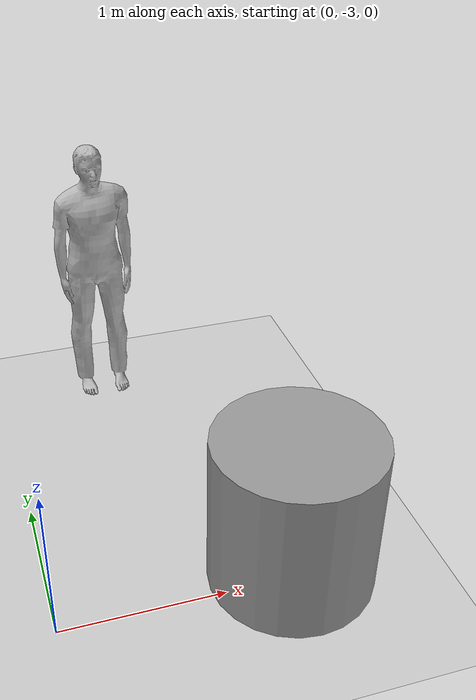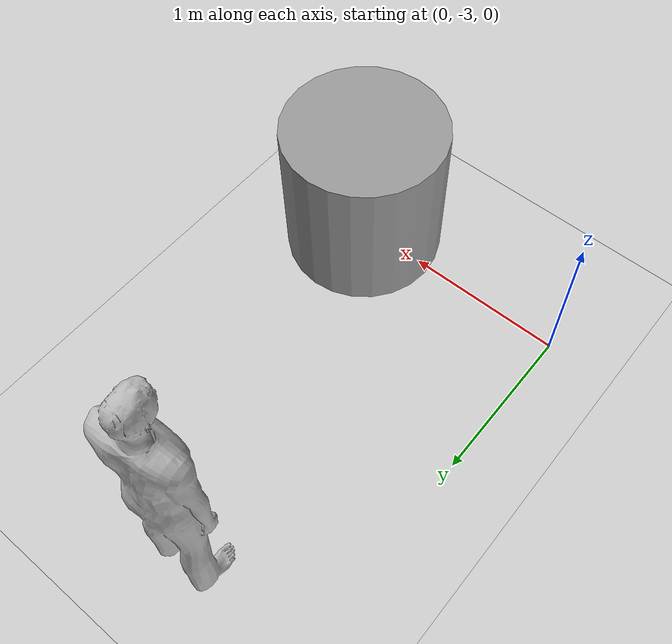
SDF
<sdf version="1.6">
 <world name="default">
  <light name="sun" type="directional">
   <pose>0 0 10 0 -0 0</pose>
   <diffuse>0.8 0.8 0.8 1</diffuse>
   <specular>0.2 0.2 0.2 1</specular>
   <attenuation>
    <range>1000</range>
    <constant>0.9</constant>
    <linear>0.01</linear>
    <quadratic>0.001</quadratic>
   </attenuation>
   <direction>-0.5 0.1 -0.9</direction>
  </light>
  <model name="ground_plane">
   <static>1</static>
   <link name="link">
    <collision name="collision">
     <geometry><plane><normal>0 0 1</normal><size>100 100</size></plane></geometry>
     <surface><friction><ode><mu>100</mu><mu2>50</mu2></ode></friction></surface>
    </collision>
    <visual name="visual">
     <cast_shadows>0</cast_shadows>
     <geometry><plane><normal>0 0 1</normal><size>100 100</size></plane></geometry>
     <material>
      <script><uri>file://media/materials/scripts/gazebo.material</uri><name>Gazebo/Grey</name></script>
     </material>
    </visual>
   </link>
  </model>
  <gravity>0 0 -9.8</gravity>
  <magnetic_field>6e-06 2.3e-05 -4.2e-05</magnetic_field>
  <atmosphere type="adiabatic"/>
  <physics name="default_physics" default="0" type="ode">
   <max_step_size>0.001</max_step_size>
   <real_time_factor>1</real_time_factor>
   <real_time_update_rate>1000</real_time_update_rate>
  </physics>
  <scene><ambient>0.4 0.4 0.4 1</ambient><background>0.7 0.7 0.7 1</background><shadows>1</shadows></scene>
  <spherical_coordinates>
   <surface_model>EARTH_WGS84</surface_model>
   <latitude_deg>0</latitude_deg>
   <longitude_deg>0</longitude_deg>
   <elevation>0</elevation>
   <heading_deg>0</heading_deg>
  </spherical_coordinates>
  <model name="person_standing">
   <link name="link">
    <inertial>
     <pose>0 -0.1 0.95 0 -0 0</pose>
     <mass>80</mass>
     <inertia><ixx>24.88</ixx><ixy>0</ixy><ixz>0</ixz><iyy>25.73</iyy><iyz>0</iyz><izz>2.48</izz></inertia>
    </inertial>
    <collision name="bottom">
     <pose>0 -0.1 0.01 0 -0 0</pose>
     <geometry><box><size>0.5 0.35 0.02</size></box></geometry>
    </collision>
    <collision name="person">
     <pose>0 0 0.02 0.04 -0 0</pose>
     <geometry><mesh><uri>model://person_standing/meshes/standing.dae</uri></mesh></geometry>
    </collision>
    <visual name="visual">
     <pose>0 0 0.02 0.04 -0 0</pose>
     <geometry><mesh><uri>model://person_standing/meshes/standing.dae</uri></mesh></geometry>
    </visual>
   </link>
   <pose>0.74765 -0.636542 -0 1e-06 -1e-06 -0.000258</pose>
  </model>
  <model name="unit_cylinder">
   <pose>1.41549 -2.95028 0.499997 3e-06 4e-06 -0</pose>
   <link name="link">
    <inertial>
     <mass>1</mass>
     <inertia><ixx>0.145833</ixx><ixy>0</ixy><ixz>0</ixz><iyy>0.145833</iyy><iyz>0</iyz><izz>0.125</izz></inertia>
    </inertial>
    <collision name="collision">
     <geometry><cylinder><radius>0.5</radius><length>1</length></cylinder></geometry>
    </collision>
    <visual name="visual">
     <geometry><cylinder><radius>0.5</radius><length>1</length></cylinder></geometry>
     <material>
      <script><name>Gazebo/Grey</name><uri>file://media/materials/scripts/gazebo.material</uri></script>
     </material>
    </visual>
   </link>
  </model>
 </world>
</sdf>
